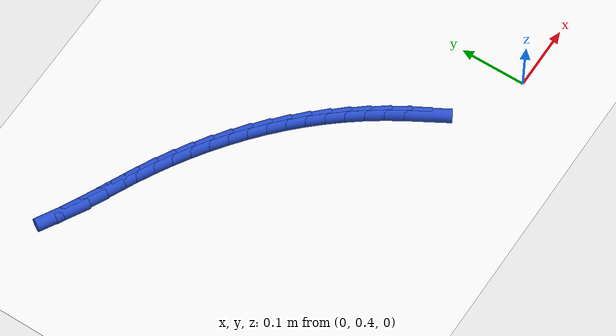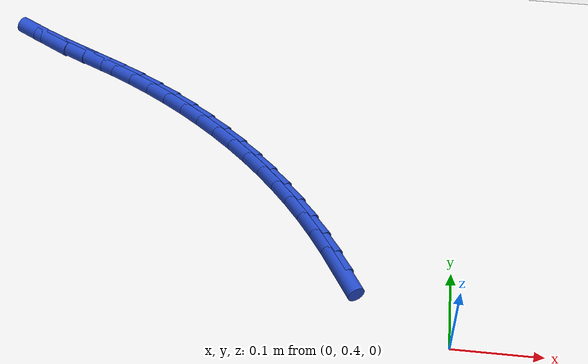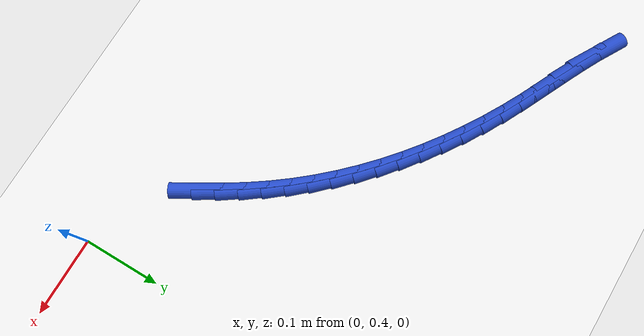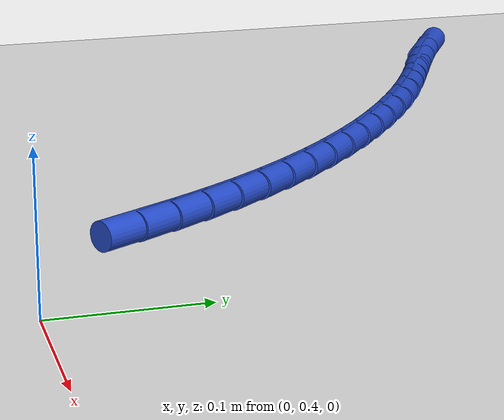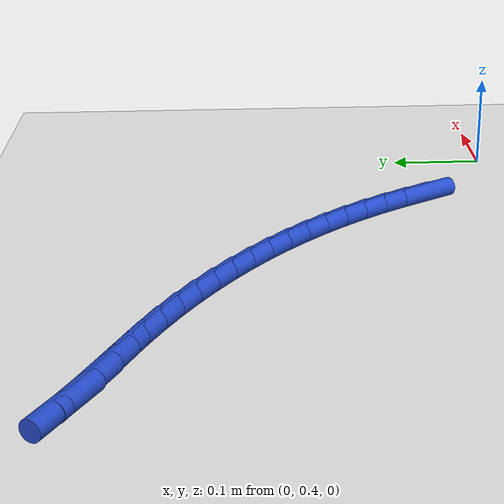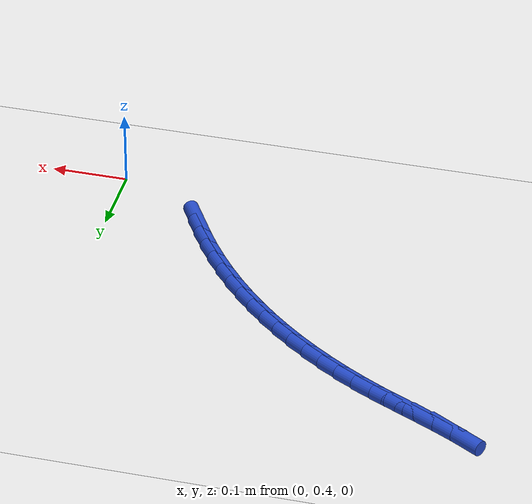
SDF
<sdf version="1.6">
 <world name="default">
  <model name="ground_plane">
   <static>1</static>
   <link name="link">
    <collision name="collision">
     <geometry><plane><normal>0 0 1</normal><size>100 100</size></plane></geometry>
     <surface><friction><ode><mu>100</mu><mu2>50</mu2></ode></friction></surface>
    </collision>
    <visual name="visual">
     <cast_shadows>0</cast_shadows>
     <geometry><plane><normal>0 0 1</normal><size>100 100</size></plane></geometry>
     <material>
      <script><uri>file://media/materials/scripts/gazebo.material</uri><name>Gazebo/WhiteGlow</name></script>
     </material>
    </visual>
   </link>
  </model>
  <model name="line">
   <link name="link_18">
    <pose>-0.12284139187034897 0.4873979509779505 0.01 0 1.57 -1.0412599568365983</pose>
    <collision name="collision">
     <geometry><cylinder><radius>0.01</radius><length>0.08</length></cylinder></geometry>
    </collision>
    <visual name="visual">
     <material>
      <script><name>Gazebo/Blue</name><uri>file://media/materials/scripts/gazebo.material</uri></script>
     </material>
     <geometry><cylinder><radius>0.01</radius><length>0.08</length></cylinder></geometry>
    </visual>
   </link>
   <link name="link_19">
    <pose>-0.1370520618752126 0.5116774764532573 0.01 0 1.57 -1.0023134869240284</pose>
    <collision name="collision">
     <geometry><cylinder><radius>0.01</radius><length>0.08</length></cylinder></geometry>
    </collision>
    <visual name="visual">
     <material>
      <script><name>Gazebo/Blue</name><uri>file://media/materials/scripts/gazebo.material</uri></script>
     </material>
     <geometry><cylinder><radius>0.01</radius><length>0.08</length></cylinder></geometry>
    </visual>
   </link>
   <link name="link_20">
    <pose>-0.15216875018827003 0.5353405551544882 0.01 0 1.57 -0.9614908124573307</pose>
    <collision name="collision">
     <geometry><cylinder><radius>0.01</radius><length>0.08</length></cylinder></geometry>
    </collision>
    <visual name="visual">
     <material>
      <script><name>Gazebo/Blue</name><uri>file://media/materials/scripts/gazebo.material</uri></script>
     </material>
     <geometry><cylinder><radius>0.01</radius><length>0.08</length></cylinder></geometry>
    </visual>
   </link>
   <link name="link_21">
    <pose>-0.16821456613895763 0.5583325974789989 0.01 0 1.57 -0.9187779019538358</pose>
    <collision name="collision">
     <geometry><cylinder><radius>0.01</radius><length>0.08</length></cylinder></geometry>
    </collision>
    <visual name="visual">
     <material>
      <script><name>Gazebo/Blue</name><uri>file://media/materials/scripts/gazebo.material</uri></script>
     </material>
     <geometry><cylinder><radius>0.01</radius><length>0.08</length></cylinder></geometry>
    </visual>
   </link>
   <link name="link_22">
    <pose>-0.18521261905671169 0.5805990138241449 0.01 0 1.57 -0.8745158215303144</pose>
    <collision name="collision">
     <geometry><cylinder><radius>0.01</radius><length>0.08</length></cylinder></geometry>
    </collision>
    <visual name="visual">
     <material>
      <script><name>Gazebo/Blue</name><uri>file://media/materials/scripts/gazebo.material</uri></script>
     </material>
     <geometry><cylinder><radius>0.01</radius><length>0.08</length></cylinder></geometry>
    </visual>
   </link>
   <link name="link_23">
    <pose>-0.20317829433896414 0.6020903434587793 0.01 0 1.57 -0.8306669716038413</pose>
    <collision name="collision">
     <geometry><cylinder><radius>0.01</radius><length>0.08</length></cylinder></geometry>
    </collision>
    <visual name="visual">
     <material>
      <script><name>Gazebo/Blue</name><uri>file://media/materials/scripts/gazebo.material</uri></script>
     </material>
     <geometry><cylinder><radius>0.01</radius><length>0.08</length></cylinder></geometry>
    </visual>
   </link>
   <link name="link_24">
    <pose>-0.22208143795563148 0.6227873648966938 0.01 0 1.57 -0.7879356869457806</pose>
    <collision name="collision">
     <geometry><cylinder><radius>0.01</radius><length>0.08</length></cylinder></geometry>
    </collision>
    <visual name="visual">
     <material>
      <script><name>Gazebo/Blue</name><uri>file://media/materials/scripts/gazebo.material</uri></script>
     </material>
     <geometry><cylinder><radius>0.01</radius><length>0.08</length></cylinder></geometry>
    </visual>
   </link>
   <link name="link_25">
    <pose>-0.2418752635777337 0.6426819008871416 0.01 0 1.57 -0.7463006455793769</pose>
    <collision name="collision">
     <geometry><cylinder><radius>0.01</radius><length>0.08</length></cylinder></geometry>
    </collision>
    <visual name="visual">
     <material>
      <script><name>Gazebo/Blue</name><uri>file://media/materials/scripts/gazebo.material</uri></script>
     </material>
     <geometry><cylinder><radius>0.01</radius><length>0.08</length></cylinder></geometry>
    </visual>
   </link>
   <link name="link_26">
    <pose>-0.2625129603752049 0.6617657904486699 0.01 0 1.57 -0.7057261654845833</pose>
    <collision name="collision">
     <geometry><cylinder><radius>0.01</radius><length>0.08</length></cylinder></geometry>
    </collision>
    <visual name="visual">
     <material>
      <script><name>Gazebo/Blue</name><uri>file://media/materials/scripts/gazebo.material</uri></script>
     </material>
     <geometry><cylinder><radius>0.01</radius><length>0.08</length></cylinder></geometry>
    </visual>
   </link>
   <link name="link_27">
    <pose>-0.28394771751797887 0.6800308725998256 0.01 0 1.57 -0.6661653312461956</pose>
    <collision name="collision">
     <geometry><cylinder><radius>0.01</radius><length>0.08</length></cylinder></geometry>
    </collision>
    <visual name="visual">
     <material>
      <script><name>Gazebo/Blue</name><uri>file://media/materials/scripts/gazebo.material</uri></script>
     </material>
     <geometry><cylinder><radius>0.01</radius><length>0.08</length></cylinder></geometry>
    </visual>
   </link>
   <link name="link_28">
    <pose>-0.3061327241759898 0.6974689863591556 0.01 0 1.57 -0.6275619176166509</pose>
    <collision name="collision">
     <geometry><cylinder><radius>0.01</radius><length>0.08</length></cylinder></geometry>
    </collision>
    <visual name="visual">
     <material>
      <script><name>Gazebo/Blue</name><uri>file://media/materials/scripts/gazebo.material</uri></script>
     </material>
     <geometry><cylinder><radius>0.01</radius><length>0.08</length></cylinder></geometry>
    </visual>
   </link>
   <link name="link_29">
    <pose>-0.3290211695191718 0.7140719707452078 0.01 0 1.57 -0.5898521087856721</pose>
    <collision name="collision">
     <geometry><cylinder><radius>0.01</radius><length>0.08</length></cylinder></geometry>
    </collision>
    <visual name="visual">
     <material>
      <script><name>Gazebo/Blue</name><uri>file://media/materials/scripts/gazebo.material</uri></script>
     </material>
     <geometry><cylinder><radius>0.01</radius><length>0.08</length></cylinder></geometry>
    </visual>
   </link>
   <link name="link_30">
    <pose>-0.35256624271745873 0.7298316647765284 0.01 0 1.57 -0.5529659905632488</pose>
    <collision name="collision">
     <geometry><cylinder><radius>0.01</radius><length>0.08</length></cylinder></geometry>
    </collision>
    <visual name="visual">
     <material>
      <script><name>Gazebo/Blue</name><uri>file://media/materials/scripts/gazebo.material</uri></script>
     </material>
     <geometry><cylinder><radius>0.01</radius><length>0.08</length></cylinder></geometry>
    </visual>
   </link>
   <link name="link_31">
    <pose>-0.3767211329407846 0.744739907471665 0.01 0 1.57 -0.5168288096848384</pose>
    <collision name="collision">
     <geometry><cylinder><radius>0.01</radius><length>0.08</length></cylinder></geometry>
    </collision>
    <visual name="visual">
     <material>
      <script><name>Gazebo/Blue</name><uri>file://media/materials/scripts/gazebo.material</uri></script>
     </material>
     <geometry><cylinder><radius>0.01</radius><length>0.08</length></cylinder></geometry>
    </visual>
   </link>
   <link name="link_32">
    <pose>-0.40143902935908365 0.7587885378491649 0.01 0 1.57 -0.4814641617050005</pose>
    <collision name="collision">
     <geometry><cylinder><radius>0.01</radius><length>0.08</length></cylinder></geometry>
    </collision>
    <visual name="visual">
     <material>
      <script><name>Gazebo/Blue</name><uri>file://media/materials/scripts/gazebo.material</uri></script>
     </material>
     <geometry><cylinder><radius>0.01</radius><length>0.08</length></cylinder></geometry>
    </visual>
   </link>
   <link name="link_33">
    <pose>-0.42667170668410437 0.7719719372036912 0.01 0 1.57 -0.45327145851608164</pose>
    <collision name="collision">
     <geometry><cylinder><radius>0.01</radius><length>0.08</length></cylinder></geometry>
    </collision>
    <visual name="visual">
     <material>
      <script><name>Gazebo/Blue</name><uri>file://media/materials/scripts/gazebo.material</uri></script>
     </material>
     <geometry><cylinder><radius>0.01</radius><length>0.08</length></cylinder></geometry>
    </visual>
   </link>
   <link name="link_34">
    <pose>-0.45228100469497945 0.7844461313617761 0.01 0 1.57 -0.4423971228522923</pose>
    <collision name="collision">
     <geometry><cylinder><radius>0.01</radius><length>0.08</length></cylinder></geometry>
    </collision>
    <visual name="visual">
     <material>
      <script><name>Gazebo/Blue</name><uri>file://media/materials/scripts/gazebo.material</uri></script>
     </material>
     <geometry><cylinder><radius>0.01</radius><length>0.08</length></cylinder></geometry>
    </visual>
   </link>
   <link name="link_35">
    <pose>-0.47798636943449774 0.7966230775014626 0.01 0 1.57 -0.4497587900691112</pose>
    <collision name="collision">
     <geometry><cylinder><radius>0.01</radius><length>0.08</length></cylinder></geometry>
    </collision>
    <visual name="visual">
     <material>
      <script><name>Gazebo/Blue</name><uri>file://media/materials/scripts/gazebo.material</uri></script>
     </material>
     <geometry><cylinder><radius>0.01</radius><length>0.08</length></cylinder></geometry>
    </visual>
   </link>
   <link name="link_36">
    <pose>-0.5034946412111633 0.8089373897146083 0.01 0 1.57 -0.47563905081938845</pose>
    <collision name="collision">
     <geometry><cylinder><radius>0.01</radius><length>0.08</length></cylinder></geometry>
    </collision>
    <visual name="visual">
     <material>
      <script><name>Gazebo/Blue</name><uri>file://media/materials/scripts/gazebo.material</uri></script>
     </material>
     <geometry><cylinder><radius>0.01</radius><length>0.08</length></cylinder></geometry>
    </visual>
   </link>
   <link name="link_37">
    <pose>-0.5285126603334803 0.821823682093072 0.01 0 1.57 -0.5205304839110462</pose>
    <collision name="collision">
     <geometry><cylinder><radius>0.01</radius><length>0.08</length></cylinder></geometry>
    </collision>
    <visual name="visual">
     <material>
      <script><name>Gazebo/Blue</name><uri>file://media/materials/scripts/gazebo.material</uri></script>
     </material>
     <geometry><cylinder><radius>0.01</radius><length>0.08</length></cylinder></geometry>
    </visual>
   </link>
  </model>
 </world>
</sdf>
